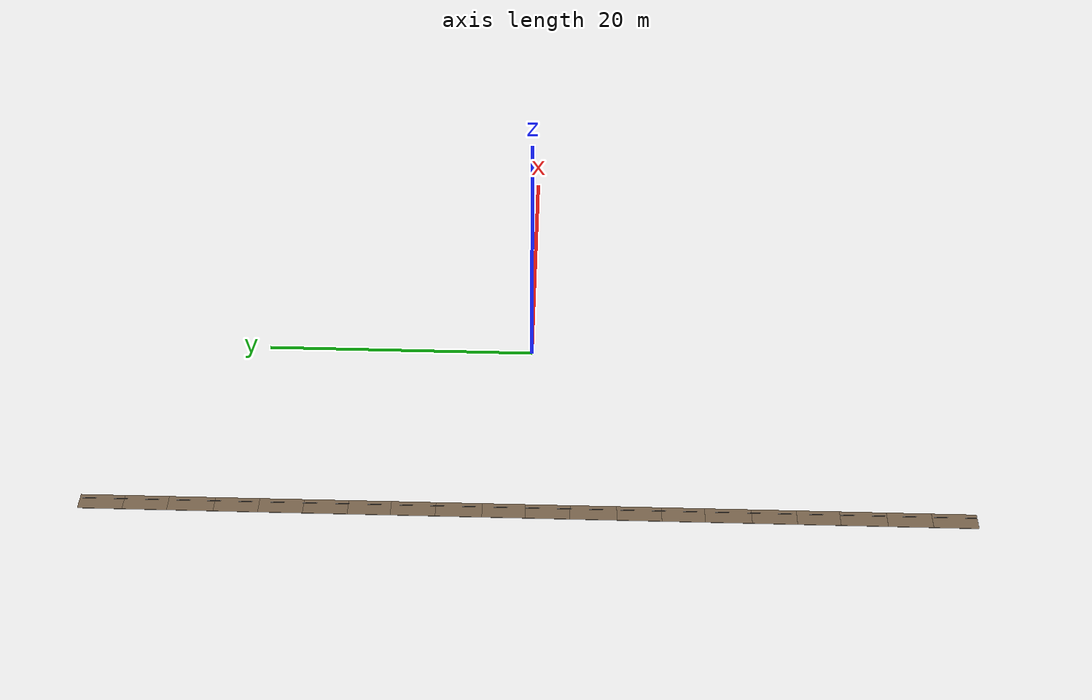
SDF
<sdf version="1.9">
 <world name="orchard_10x41">
  <model name="understory_r0">
   <static>true</static>
   <link name="link">
    <visual name="soil_1">
     <pose>-15.750 -29.450 0.513 0.0002 0.0000 0.0000</pose>
     <geometry><box><size>1.2000 3.2240 0.0300</size></box></geometry>
     <material>
      <ambient>0.400 0.330 0.250 1</ambient>
      <diffuse>0.440 0.363 0.275 1</diffuse>
      <specular>0.120 0.099 0.075 1</specular>
     </material>
     <plugin filename="gz-sim-label-system" name="gz::sim::systems::Label"><label>66</label></plugin>
    </visual>
    <visual name="soil_2">
     <pose>-15.750 -26.350 0.514 0.0003 0.0000 0.0000</pose>
     <geometry><box><size>1.2000 3.2240 0.0300</size></box></geometry>
     <material>
      <ambient>0.400 0.330 0.250 1</ambient>
      <diffuse>0.440 0.363 0.275 1</diffuse>
      <specular>0.120 0.099 0.075 1</specular>
     </material>
     <plugin filename="gz-sim-label-system" name="gz::sim::systems::Label"><label>66</label></plugin>
    </visual>
    <visual name="soil_3">
     <pose>-15.750 -23.250 0.515 0.0003 0.0000 0.0000</pose>
     <geometry><box><size>1.2000 3.2240 0.0300</size></box></geometry>
     <material>
      <ambient>0.400 0.330 0.250 1</ambient>
      <diffuse>0.440 0.363 0.275 1</diffuse>
      <specular>0.120 0.099 0.075 1</specular>
     </material>
     <plugin filename="gz-sim-label-system" name="gz::sim::systems::Label"><label>66</label></plugin>
    </visual>
    <visual name="soil_4">
     <pose>-15.750 -20.150 0.515 0.0001 0.0000 0.0000</pose>
     <geometry><box><size>1.2000 3.2240 0.0300</size></box></geometry>
     <material>
      <ambient>0.400 0.330 0.250 1</ambient>
      <diffuse>0.440 0.363 0.275 1</diffuse>
      <specular>0.120 0.099 0.075 1</specular>
     </material>
     <plugin filename="gz-sim-label-system" name="gz::sim::systems::Label"><label>66</label></plugin>
    </visual>
    <visual name="soil_5">
     <pose>-15.750 -17.050 0.516 0.0004 0.0000 0.0000</pose>
     <geometry><box><size>1.2000 3.2240 0.0300</size></box></geometry>
     <material>
      <ambient>0.400 0.330 0.250 1</ambient>
      <diffuse>0.440 0.363 0.275 1</diffuse>
      <specular>0.120 0.099 0.075 1</specular>
     </material>
     <plugin filename="gz-sim-label-system" name="gz::sim::systems::Label"><label>66</label></plugin>
    </visual>
    <visual name="soil_6">
     <pose>-15.750 -13.950 0.516 -0.0005 0.0000 0.0000</pose>
     <geometry><box><size>1.2000 3.2240 0.0300</size></box></geometry>
     <material>
      <ambient>0.400 0.330 0.250 1</ambient>
      <diffuse>0.440 0.363 0.275 1</diffuse>
      <specular>0.120 0.099 0.075 1</specular>
     </material>
     <plugin filename="gz-sim-label-system" name="gz::sim::systems::Label"><label>66</label></plugin>
    </visual>
    <visual name="soil_7">
     <pose>-15.750 -10.850 0.514 -0.0004 0.0000 0.0000</pose>
     <geometry><box><size>1.2000 3.2240 0.0300</size></box></geometry>
     <material>
      <ambient>0.400 0.330 0.250 1</ambient>
      <diffuse>0.440 0.363 0.275 1</diffuse>
      <specular>0.120 0.099 0.075 1</specular>
     </material>
     <plugin filename="gz-sim-label-system" name="gz::sim::systems::Label"><label>66</label></plugin>
    </visual>
    <visual name="soil_8">
     <pose>-15.750 -7.750 0.514 0.0001 0.0000 0.0000</pose>
     <geometry><box><size>1.2000 3.2240 0.0300</size></box></geometry>
     <material>
      <ambient>0.400 0.330 0.250 1</ambient>
      <diffuse>0.440 0.363 0.275 1</diffuse>
      <specular>0.120 0.099 0.075 1</specular>
     </material>
     <plugin filename="gz-sim-label-system" name="gz::sim::systems::Label"><label>66</label></plugin>
    </visual>
    <visual name="soil_9">
     <pose>-15.750 -4.650 0.514 -0.0004 0.0000 0.0000</pose>
     <geometry><box><size>1.2000 3.2240 0.0300</size></box></geometry>
     <material>
      <ambient>0.400 0.330 0.250 1</ambient>
      <diffuse>0.440 0.363 0.275 1</diffuse>
      <specular>0.120 0.099 0.075 1</specular>
     </material>
     <plugin filename="gz-sim-label-system" name="gz::sim::systems::Label"><label>66</label></plugin>
    </visual>
    <visual name="soil_10">
     <pose>-15.750 -1.550 0.512 -0.0006 0.0000 0.0000</pose>
     <geometry><box><size>1.2000 3.2240 0.0300</size></box></geometry>
     <material>
      <ambient>0.400 0.330 0.250 1</ambient>
      <diffuse>0.440 0.363 0.275 1</diffuse>
      <specular>0.120 0.099 0.075 1</specular>
     </material>
     <plugin filename="gz-sim-label-system" name="gz::sim::systems::Label"><label>66</label></plugin>
    </visual>
    <visual name="soil_11">
     <pose>-15.750 1.550 0.510 -0.0006 0.0000 0.0000</pose>
     <geometry><box><size>1.2000 3.2240 0.0300</size></box></geometry>
     <material>
      <ambient>0.400 0.330 0.250 1</ambient>
      <diffuse>0.440 0.363 0.275 1</diffuse>
      <specular>0.120 0.099 0.075 1</specular>
     </material>
     <plugin filename="gz-sim-label-system" name="gz::sim::systems::Label"><label>66</label></plugin>
    </visual>
    <visual name="soil_12">
     <pose>-15.750 4.650 0.509 -0.0002 0.0000 0.0000</pose>
     <geometry><box><size>1.2000 3.2240 0.0300</size></box></geometry>
     <material>
      <ambient>0.400 0.330 0.250 1</ambient>
      <diffuse>0.440 0.363 0.275 1</diffuse>
      <specular>0.120 0.099 0.075 1</specular>
     </material>
     <plugin filename="gz-sim-label-system" name="gz::sim::systems::Label"><label>66</label></plugin>
    </visual>
    <visual name="soil_13">
     <pose>-15.750 7.750 0.509 0.0004 0.0000 0.0000</pose>
     <geometry><box><size>1.2000 3.2240 0.0300</size></box></geometry>
     <material>
      <ambient>0.400 0.330 0.250 1</ambient>
      <diffuse>0.440 0.363 0.275 1</diffuse>
      <specular>0.120 0.099 0.075 1</specular>
     </material>
     <plugin filename="gz-sim-label-system" name="gz::sim::systems::Label"><label>66</label></plugin>
    </visual>
    <visual name="soil_14">
     <pose>-15.750 10.850 0.508 -0.0008 0.0000 0.0000</pose>
     <geometry><box><size>1.2000 3.2240 0.0300</size></box></geometry>
     <material>
      <ambient>0.400 0.330 0.250 1</ambient>
      <diffuse>0.440 0.363 0.275 1</diffuse>
      <specular>0.120 0.099 0.075 1</specular>
     </material>
     <plugin filename="gz-sim-label-system" name="gz::sim::systems::Label"><label>66</label></plugin>
    </visual>
    <visual name="soil_15">
     <pose>-15.750 13.950 0.505 -0.0013 0.0000 0.0000</pose>
     <geometry><box><size>1.2000 3.2240 0.0300</size></box></geometry>
     <material>
      <ambient>0.400 0.330 0.250 1</ambient>
      <diffuse>0.440 0.363 0.275 1</diffuse>
      <specular>0.120 0.099 0.075 1</specular>
     </material>
     <plugin filename="gz-sim-label-system" name="gz::sim::systems::Label"><label>66</label></plugin>
    </visual>
    <visual name="soil_16">
     <pose>-15.750 17.050 0.501 -0.0013 0.0000 0.0000</pose>
     <geometry><box><size>1.2000 3.2240 0.0300</size></box></geometry>
     <material>
      <ambient>0.400 0.330 0.250 1</ambient>
      <diffuse>0.440 0.363 0.275 1</diffuse>
      <specular>0.120 0.099 0.075 1</specular>
     </material>
     <plugin filename="gz-sim-label-system" name="gz::sim::systems::Label"><label>66</label></plugin>
    </visual>
    <visual name="soil_17">
     <pose>-15.750 20.150 0.499 -0.0001 0.0000 0.0000</pose>
     <geometry><box><size>1.2000 3.2240 0.0300</size></box></geometry>
     <material>
      <ambient>0.400 0.330 0.250 1</ambient>
      <diffuse>0.440 0.363 0.275 1</diffuse>
      <specular>0.120 0.099 0.075 1</specular>
     </material>
     <plugin filename="gz-sim-label-system" name="gz::sim::systems::Label"><label>66</label></plugin>
    </visual>
    <visual name="soil_18">
     <pose>-15.750 23.250 0.500 0.0006 0.0000 0.0000</pose>
     <geometry><box><size>1.2000 3.2240 0.0300</size></box></geometry>
     <material>
      <ambient>0.400 0.330 0.250 1</ambient>
      <diffuse>0.440 0.363 0.275 1</diffuse>
      <specular>0.120 0.099 0.075 1</specular>
     </material>
     <plugin filename="gz-sim-label-system" name="gz::sim::systems::Label"><label>66</label></plugin>
    </visual>
    <visual name="soil_19">
     <pose>-15.750 26.350 0.501 0.0003 0.0000 0.0000</pose>
     <geometry><box><size>1.2000 3.2240 0.0300</size></box></geometry>
     <material>
      <ambient>0.400 0.330 0.250 1</ambient>
      <diffuse>0.440 0.363 0.275 1</diffuse>
      <specular>0.120 0.099 0.075 1</specular>
     </material>
     <plugin filename="gz-sim-label-system" name="gz::sim::systems::Label"><label>66</label></plugin>
    </visual>
    <visual name="soil_20">
     <pose>-15.750 29.450 0.501 -0.0002 0.0000 0.0000</pose>
     <geometry><box><size>1.2000 3.2240 0.0300</size></box></geometry>
     <material>
      <ambient>0.400 0.330 0.250 1</ambient>
      <diffuse>0.440 0.363 0.275 1</diffuse>
      <specular>0.120 0.099 0.075 1</specular>
     </material>
     <plugin filename="gz-sim-label-system" name="gz::sim::systems::Label"><label>66</label></plugin>
    </visual>
    <visual name="drip_21">
     <pose>-15.470 -29.450 0.543 1.5710 0.0000 0.0000</pose>
     <geometry><cylinder><radius>0.0110</radius><length>3.1620</length></cylinder></geometry>
     <material>
      <ambient>0.100 0.100 0.110 1</ambient>
      <diffuse>0.110 0.110 0.121 1</diffuse>
      <specular>0.030 0.030 0.033 1</specular>
     </material>
     <plugin filename="gz-sim-label-system" name="gz::sim::systems::Label"><label>67</label></plugin>
    </visual>
    <visual name="drip_22">
     <pose>-15.470 -26.350 0.544 1.5711 0.0000 0.0000</pose>
     <geometry><cylinder><radius>0.0110</radius><length>3.1620</length></cylinder></geometry>
     <material>
      <ambient>0.100 0.100 0.110 1</ambient>
      <diffuse>0.110 0.110 0.121 1</diffuse>
      <specular>0.030 0.030 0.033 1</specular>
     </material>
     <plugin filename="gz-sim-label-system" name="gz::sim::systems::Label"><label>67</label></plugin>
    </visual>
    <visual name="drip_23">
     <pose>-15.470 -23.250 0.545 1.5711 0.0000 0.0000</pose>
     <geometry><cylinder><radius>0.0110</radius><length>3.1620</length></cylinder></geometry>
     <material>
      <ambient>0.100 0.100 0.110 1</ambient>
      <diffuse>0.110 0.110 0.121 1</diffuse>
      <specular>0.030 0.030 0.033 1</specular>
     </material>
     <plugin filename="gz-sim-label-system" name="gz::sim::systems::Label"><label>67</label></plugin>
    </visual>
    <visual name="drip_24">
     <pose>-15.470 -20.150 0.545 1.5709 0.0000 0.0000</pose>
     <geometry><cylinder><radius>0.0110</radius><length>3.1620</length></cylinder></geometry>
     <material>
      <ambient>0.100 0.100 0.110 1</ambient>
      <diffuse>0.110 0.110 0.121 1</diffuse>
      <specular>0.030 0.030 0.033 1</specular>
     </material>
     <plugin filename="gz-sim-label-system" name="gz::sim::systems::Label"><label>67</label></plugin>
    </visual>
    <visual name="drip_25">
     <pose>-15.470 -17.050 0.546 1.5712 0.0000 0.0000</pose>
     <geometry><cylinder><radius>0.0110</radius><length>3.1620</length></cylinder></geometry>
     <material>
      <ambient>0.100 0.100 0.110 1</ambient>
      <diffuse>0.110 0.110 0.121 1</diffuse>
      <specular>0.030 0.030 0.033 1</specular>
     </material>
     <plugin filename="gz-sim-label-system" name="gz::sim::systems::Label"><label>67</label></plugin>
    </visual>
    <visual name="drip_26">
     <pose>-15.470 -13.950 0.546 1.5703 0.0000 0.0000</pose>
     <geometry><cylinder><radius>0.0110</radius><length>3.1620</length></cylinder></geometry>
     <material>
      <ambient>0.100 0.100 0.110 1</ambient>
      <diffuse>0.110 0.110 0.121 1</diffuse>
      <specular>0.030 0.030 0.033 1</specular>
     </material>
     <plugin filename="gz-sim-label-system" name="gz::sim::systems::Label"><label>67</label></plugin>
    </visual>
    <visual name="drip_27">
     <pose>-15.470 -10.850 0.544 1.5704 0.0000 0.0000</pose>
     <geometry><cylinder><radius>0.0110</radius><length>3.1620</length></cylinder></geometry>
     <material>
      <ambient>0.100 0.100 0.110 1</ambient>
      <diffuse>0.110 0.110 0.121 1</diffuse>
      <specular>0.030 0.030 0.033 1</specular>
     </material>
     <plugin filename="gz-sim-label-system" name="gz::sim::systems::Label"><label>67</label></plugin>
    </visual>
    <visual name="drip_28">
     <pose>-15.470 -7.750 0.544 1.5709 0.0000 0.0000</pose>
     <geometry><cylinder><radius>0.0110</radius><length>3.1620</length></cylinder></geometry>
     <material>
      <ambient>0.100 0.100 0.110 1</ambient>
      <diffuse>0.110 0.110 0.121 1</diffuse>
      <specular>0.030 0.030 0.033 1</specular>
     </material>
     <plugin filename="gz-sim-label-system" name="gz::sim::systems::Label"><label>67</label></plugin>
    </visual>
    <visual name="drip_29">
     <pose>-15.470 -4.650 0.544 1.5704 0.0000 0.0000</pose>
     <geometry><cylinder><radius>0.0110</radius><length>3.1620</length></cylinder></geometry>
     <material>
      <ambient>0.100 0.100 0.110 1</ambient>
      <diffuse>0.110 0.110 0.121 1</diffuse>
      <specular>0.030 0.030 0.033 1</specular>
     </material>
     <plugin filename="gz-sim-label-system" name="gz::sim::systems::Label"><label>67</label></plugin>
    </visual>
    <visual name="drip_30">
     <pose>-15.470 -1.550 0.542 1.5702 0.0000 0.0000</pose>
     <geometry><cylinder><radius>0.0110</radius><length>3.1620</length></cylinder></geometry>
     <material>
      <ambient>0.100 0.100 0.110 1</ambient>
      <diffuse>0.110 0.110 0.121 1</diffuse>
      <specular>0.030 0.030 0.033 1</specular>
     </material>
     <plugin filename="gz-sim-label-system" name="gz::sim::systems::Label"><label>67</label></plugin>
    </visual>
    <visual name="drip_31">
     <pose>-15.470 1.550 0.540 1.5702 0.0000 0.0000</pose>
     <geometry><cylinder><radius>0.0110</radius><length>3.1620</length></cylinder></geometry>
     <material>
      <ambient>0.100 0.100 0.110 1</ambient>
      <diffuse>0.110 0.110 0.121 1</diffuse>
      <specular>0.030 0.030 0.033 1</specular>
     </material>
     <plugin filename="gz-sim-label-system" name="gz::sim::systems::Label"><label>67</label></plugin>
    </visual>
    <visual name="drip_32">
     <pose>-15.470 4.650 0.539 1.5706 0.0000 0.0000</pose>
     <geometry><cylinder><radius>0.0110</radius><length>3.1620</length></cylinder></geometry>
     <material>
      <ambient>0.100 0.100 0.110 1</ambient>
      <diffuse>0.110 0.110 0.121 1</diffuse>
      <specular>0.030 0.030 0.033 1</specular>
     </material>
     <plugin filename="gz-sim-label-system" name="gz::sim::systems::Label"><label>67</label></plugin>
    </visual>
    <visual name="drip_33">
     <pose>-15.470 7.750 0.539 1.5712 0.0000 0.0000</pose>
     <geometry><cylinder><radius>0.0110</radius><length>3.1620</length></cylinder></geometry>
     <material>
      <ambient>0.100 0.100 0.110 1</ambient>
      <diffuse>0.110 0.110 0.121 1</diffuse>
      <specular>0.030 0.030 0.033 1</specular>
     </material>
     <plugin filename="gz-sim-label-system" name="gz::sim::systems::Label"><label>67</label></plugin>
    </visual>
    <visual name="drip_34">
     <pose>-15.470 10.850 0.538 1.5700 0.0000 0.0000</pose>
     <geometry><cylinder><radius>0.0110</radius><length>3.1620</length></cylinder></geometry>
     <material>
      <ambient>0.100 0.100 0.110 1</ambient>
      <diffuse>0.110 0.110 0.121 1</diffuse>
      <specular>0.030 0.030 0.033 1</specular>
     </material>
     <plugin filename="gz-sim-label-system" name="gz::sim::systems::Label"><label>67</label></plugin>
    </visual>
    <visual name="drip_35">
     <pose>-15.470 13.950 0.535 1.5695 0.0000 0.0000</pose>
     <geometry><cylinder><radius>0.0110</radius><length>3.1620</length></cylinder></geometry>
     <material>
      <ambient>0.100 0.100 0.110 1</ambient>
      <diffuse>0.110 0.110 0.121 1</diffuse>
      <specular>0.030 0.030 0.033 1</specular>
     </material>
     <plugin filename="gz-sim-label-system" name="gz::sim::systems::Label"><label>67</label></plugin>
    </visual>
    <visual name="drip_36">
     <pose>-15.470 17.050 0.531 1.5695 0.0000 0.0000</pose>
     <geometry><cylinder><radius>0.0110</radius><length>3.1620</length></cylinder></geometry>
     <material>
      <ambient>0.100 0.100 0.110 1</ambient>
      <diffuse>0.110 0.110 0.121 1</diffuse>
      <specular>0.030 0.030 0.033 1</specular>
     </material>
     <plugin filename="gz-sim-label-system" name="gz::sim::systems::Label"><label>67</label></plugin>
    </visual>
    <visual name="drip_37">
     <pose>-15.470 20.150 0.529 1.5707 0.0000 0.0000</pose>
     <geometry><cylinder><radius>0.0110</radius><length>3.1620</length></cylinder></geometry>
     <material>
      <ambient>0.100 0.100 0.110 1</ambient>
      <diffuse>0.110 0.110 0.121 1</diffuse>
      <specular>0.030 0.030 0.033 1</specular>
     </material>
     <plugin filename="gz-sim-label-system" name="gz::sim::systems::Label"><label>67</label></plugin>
    </visual>
    <visual name="drip_38">
     <pose>-15.470 23.250 0.530 1.5714 0.0000 0.0000</pose>
     <geometry><cylinder><radius>0.0110</radius><length>3.1620</length></cylinder></geometry>
     <material>
      <ambient>0.100 0.100 0.110 1</ambient>
      <diffuse>0.110 0.110 0.121 1</diffuse>
      <specular>0.030 0.030 0.033 1</specular>
     </material>
     <plugin filename="gz-sim-label-system" name="gz::sim::systems::Label"><label>67</label></plugin>
    </visual>
    <visual name="drip_39">
     <pose>-15.470 26.350 0.531 1.5711 0.0000 0.0000</pose>
     <geometry><cylinder><radius>0.0110</radius><length>3.1620</length></cylinder></geometry>
     <material>
      <ambient>0.100 0.100 0.110 1</ambient>
      <diffuse>0.110 0.110 0.121 1</diffuse>
      <specular>0.030 0.030 0.033 1</specular>
     </material>
     <plugin filename="gz-sim-label-system" name="gz::sim::systems::Label"><label>67</label></plugin>
    </visual>
    <visual name="drip_40">
     <pose>-15.470 29.450 0.531 1.5706 0.0000 0.0000</pose>
     <geometry><cylinder><radius>0.0110</radius><length>3.1620</length></cylinder></geometry>
     <material>
      <ambient>0.100 0.100 0.110 1</ambient>
      <diffuse>0.110 0.110 0.121 1</diffuse>
      <specular>0.030 0.030 0.033 1</specular>
     </material>
     <plugin filename="gz-sim-label-system" name="gz::sim::systems::Label"><label>67</label></plugin>
    </visual>
   </link>
  </model>
 </world>
</sdf>
